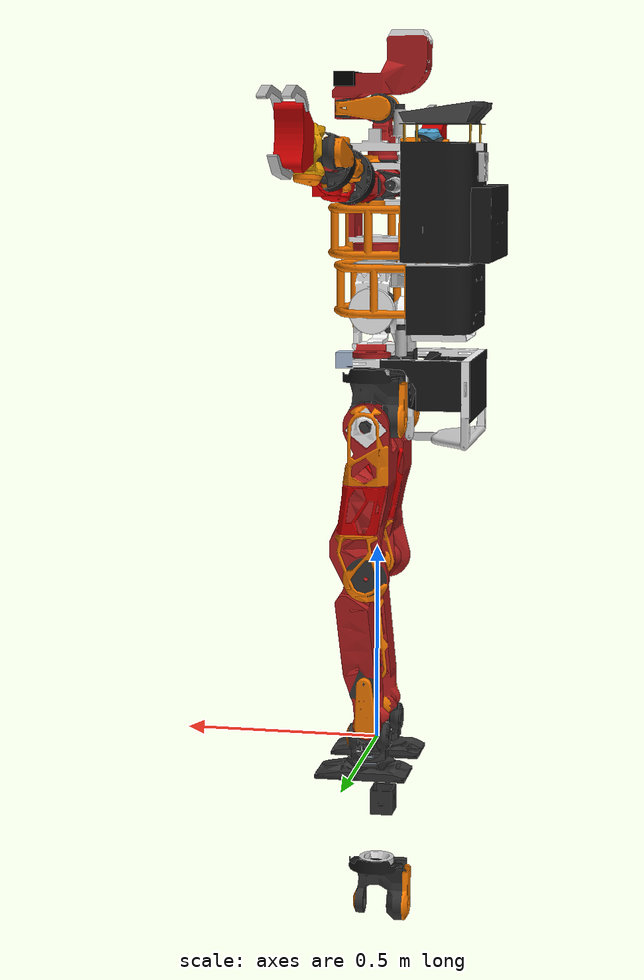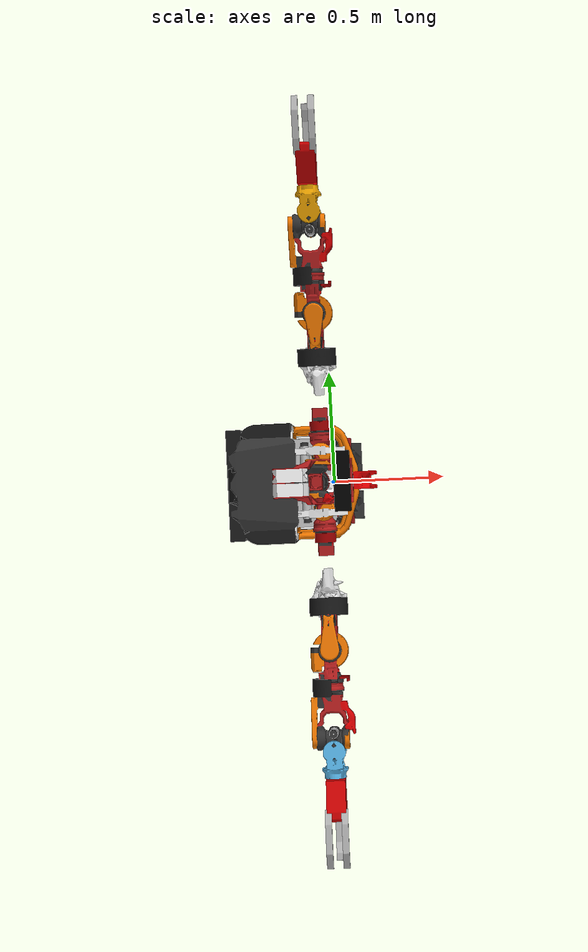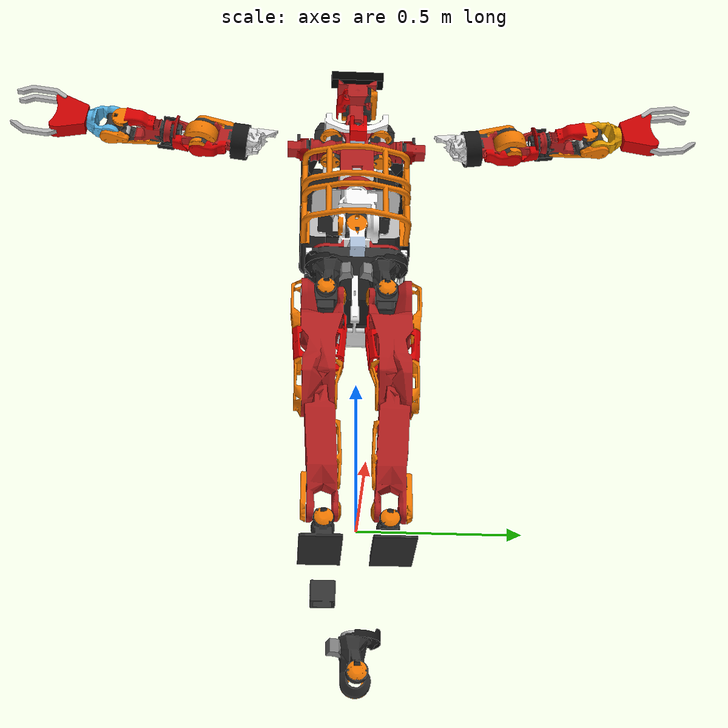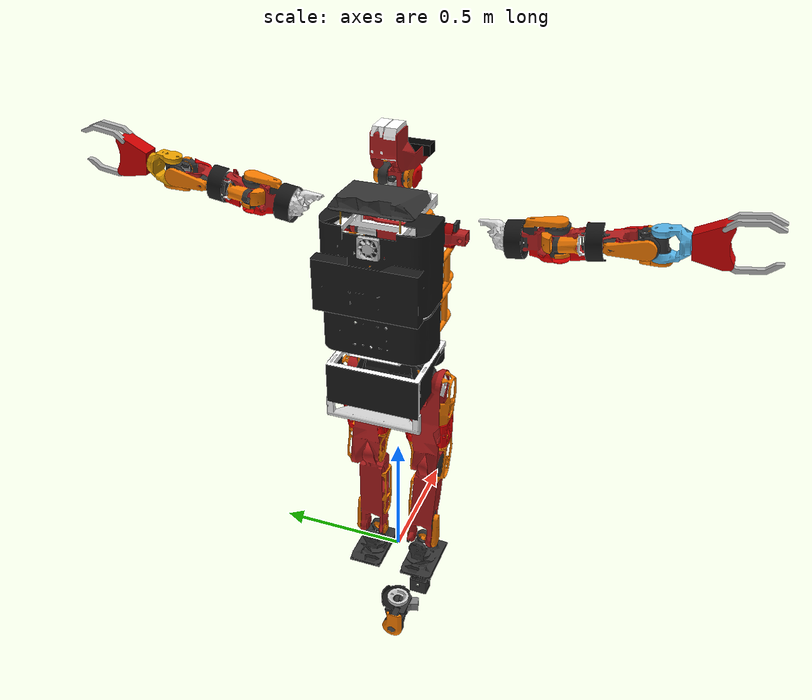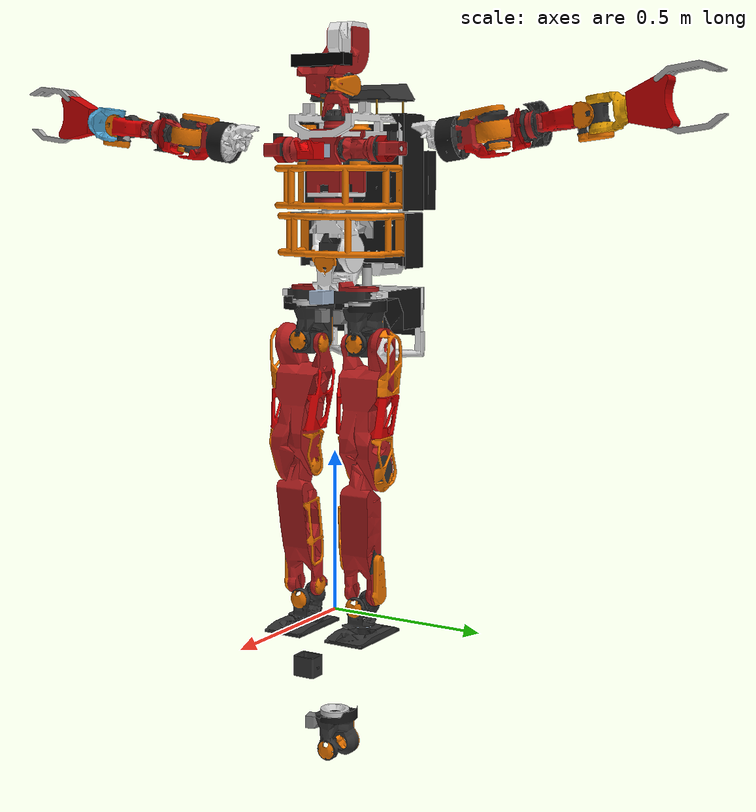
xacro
<?xml version="1.0"?>
<robot name="cart_humanoid" xmlns:xacro="http://ros.org/wiki/xacro" xmlns:xi="http://www.w3.org/2001/XInclude">
  <xacro:arg name="fix_base_link" default="false"/>
  <xacro:arg name="controllers_config" default=""/>

  <xacro:if value="$(arg fix_base_link)">
    <xacro:property name="base_link_joint_type" value="fixed" />
  </xacro:if>
  <xacro:unless value="$(arg fix_base_link)">
    <xacro:property name="base_link_joint_type" value="prismatic" />
  </xacro:unless>

  <!-- Include JAXON_RED robot URDF (contains links and joints) -->
  <xacro:include filename="$(find cart_humanoid_ros2)/urdf/JAXON_RED_gz.urdf.xacro" />

  <link name="world"/>
  <joint name="slide_x" type="${base_link_joint_type}">
    <parent link="world"/>
    <child link="slide_y_link"/>
    <limit effort="1000.0" lower="-999" upper="999" velocity="1"/>
    <axis xyz="1 0 0"/>
    <origin xyz="0 0 0.95" rpy="0 0 0" />
  </joint>

  <link name="slide_y_link">
    <inertial>
      <origin xyz="0 0 0"/>
      <mass value="1.0"/>
      <inertia ixx="1.0" ixy="0.0" ixz="0.0" iyy="1.0" iyz="0.0" izz="1.0" />
    </inertial>
  </link>

  <joint name="slide_y" type="${base_link_joint_type}">
    <parent link="slide_y_link"/>
    <child link="BODY"/>
    <limit effort="1000.0" lower="-999" upper="999" velocity="1"/>
    <axis xyz="0 1 0"/>
    <origin xyz="0 0 0" rpy="0 0 0" />
  </joint>

  <!-- Gazebo ROS2 Control Plugin -->
  <gazebo>
    <plugin filename="gz_ros2_control-system" name="gz_ros2_control::GazeboSimROS2ControlPlugin">
      <parameters>$(arg controllers_config)</parameters>
    </plugin>
  </gazebo>

</robot>

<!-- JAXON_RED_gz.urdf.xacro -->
<robot xmlns:xacro="http://www.ros.org/wiki/xacro" name="JAXON_RED">
  <!-- Include JAXON_RED body links and joints -->
  <xacro:include filename="JAXON_RED_body_stable_inertia.urdf" />

  <!-- ROS2 Control Hardware Interface -->
  <ros2_control name="GazeboSimSystem" type="system">
    <hardware>
      <plugin>gz_ros2_control/GazeboSimSystem</plugin>
    </hardware>

    <joint name="LLEG_JOINT0">
      <command_interface name="position"/>
      <state_interface name="position"/>
      <state_interface name="velocity"/>
    </joint>
    <joint name="LLEG_JOINT1">
      <command_interface name="position"/>
      <state_interface name="position"/>
      <state_interface name="velocity"/>
    </joint>
    <joint name="LLEG_JOINT2">
      <command_interface name="position"/>
      <state_interface name="position"/>
      <state_interface name="velocity"/>
    </joint>
    <joint name="LLEG_JOINT3">
      <command_interface name="position"/>
      <state_interface name="position"/>
      <state_interface name="velocity"/>
    </joint>
    <joint name="LLEG_JOINT4">
      <command_interface name="position"/>
      <state_interface name="position"/>
      <state_interface name="velocity"/>
    </joint>
    <joint name="LLEG_JOINT5">
      <command_interface name="position"/>
      <state_interface name="position"/>
      <state_interface name="velocity"/>
    </joint>

    <joint name="RLEG_JOINT0">
      <command_interface name="position"/>
      <state_interface name="position"/>
      <state_interface name="velocity"/>
    </joint>
    <joint name="RLEG_JOINT1">
      <command_interface name="position"/>
      <state_interface name="position"/>
      <state_interface name="velocity"/>
    </joint>
    <joint name="RLEG_JOINT2">
      <command_interface name="position"/>
      <state_interface name="position"/>
      <state_interface name="velocity"/>
    </joint>
    <joint name="RLEG_JOINT3">
      <command_interface name="position"/>
      <state_interface name="position"/>
      <state_interface name="velocity"/>
    </joint>
    <joint name="RLEG_JOINT4">
      <command_interface name="position"/>
      <state_interface name="position"/>
      <state_interface name="velocity"/>
    </joint>
    <joint name="RLEG_JOINT5">
      <command_interface name="position"/>
      <state_interface name="position"/>
      <state_interface name="velocity"/>
    </joint>

    <joint name="LARM_JOINT0">
      <command_interface name="position"/>
      <state_interface name="position"/>
      <state_interface name="velocity"/>
    </joint>
    <joint name="LARM_JOINT1">
      <command_interface name="position"/>
      <state_interface name="position"/>
      <state_interface name="velocity"/>
    </joint>
    <joint name="LARM_JOINT2">
      <command_interface name="position"/>
      <state_interface name="position"/>
      <state_interface name="velocity"/>
    </joint>
    <joint name="LARM_JOINT3">
      <command_interface name="position"/>
      <state_interface name="position"/>
      <state_interface name="velocity"/>
    </joint>
    <joint name="LARM_JOINT4">
      <command_interface name="position"/>
      <state_interface name="position"/>
      <state_interface name="velocity"/>
    </joint>
    <joint name="LARM_JOINT5">
      <command_interface name="position"/>
      <state_interface name="position"/>
      <state_interface name="velocity"/>
    </joint>
    <joint name="LARM_JOINT6">
      <command_interface name="position"/>
      <state_interface name="position"/>
      <state_interface name="velocity"/>
    </joint>
    <joint name="LARM_JOINT7">
      <command_interface name="position"/>
      <state_interface name="position"/>
      <state_interface name="velocity"/>
    </joint>

    <joint name="RARM_JOINT0">
      <command_interface name="position"/>
      <state_interface name="position"/>
      <state_interface name="velocity"/>
    </joint>
    <joint name="RARM_JOINT1">
      <command_interface name="position"/>
      <state_interface name="position"/>
      <state_interface name="velocity"/>
    </joint>
    <joint name="RARM_JOINT2">
      <command_interface name="position"/>
      <state_interface name="position"/>
      <state_interface name="velocity"/>
    </joint>
    <joint name="RARM_JOINT3">
      <command_interface name="position"/>
      <state_interface name="position"/>
      <state_interface name="velocity"/>
    </joint>
    <joint name="RARM_JOINT4">
      <command_interface name="position"/>
      <state_interface name="position"/>
      <state_interface name="velocity"/>
    </joint>
    <joint name="RARM_JOINT5">
      <command_interface name="position"/>
      <state_interface name="position"/>
      <state_interface name="velocity"/>
    </joint>
    <joint name="RARM_JOINT6">
      <command_interface name="position"/>
      <state_interface name="position"/>
      <state_interface name="velocity"/>
    </joint>
    <joint name="RARM_JOINT7">
      <command_interface name="position"/>
      <state_interface name="position"/>
      <state_interface name="velocity"/>
    </joint>

    <joint name="CHEST_JOINT0">
      <command_interface name="position"/>
      <state_interface name="position"/>
      <state_interface name="velocity"/>
    </joint>
    <joint name="CHEST_JOINT1">
      <command_interface name="position"/>
      <state_interface name="position"/>
      <state_interface name="velocity"/>
    </joint>
    <joint name="CHEST_JOINT2">
      <command_interface name="position"/>
      <state_interface name="position"/>
      <state_interface name="velocity"/>
    </joint>

    <joint name="HEAD_JOINT0">
      <command_interface name="position"/>
      <state_interface name="position"/>
      <state_interface name="velocity"/>
    </joint>
    <joint name="HEAD_JOINT1">
      <command_interface name="position"/>
      <state_interface name="position"/>
      <state_interface name="velocity"/>
    </joint>

    <joint name="L_finger1_joint">
      <command_interface name="position"/>
      <state_interface name="position"/>
      <state_interface name="velocity"/>
    </joint>

    <joint name="R_finger1_joint">
      <command_interface name="position"/>
      <state_interface name="position"/>
      <state_interface name="velocity"/>
    </joint>
  </ros2_control>

  <link name="LARM_LINK7">
    <visual>
      <origin xyz="0 0.0 0" rpy="0 -0 0"/>
      <geometry>
        <mesh filename="package://cart_humanoid_ros2/urdf/JAXON_RED_meshes/l_hand_attached_link.dae" scale="1 1 1" />
      </geometry>
    </visual>
    <collision>
      <origin xyz="0 0.12 0" rpy="0 -0 0"/>
      <geometry>
        <box size="0.1 0.25 0.1"/>
      </geometry>
    </collision>
    <inertial>
      <mass value="4.219" />
      <origin xyz="-0.02359 0.12884 -0.02825" rpy="0 -0 0"/>
      <inertia ixx="0.0527968" ixy="0" ixz="0" iyy="0.057042" iyz="0" izz="0.0492541"/>
    </inertial>
  </link>
  <gazebo reference="LARM_LINK7">
    <mu1>0.9</mu1>
    <mu2>0.9</mu2>
  </gazebo>

  <link name="RARM_LINK7">
    <visual>
      <origin xyz="0 0 0" rpy="0 -0 0"/>
      <geometry>
        <mesh filename="package://cart_humanoid_ros2/urdf/JAXON_RED_meshes/r_hand_attached_link.dae" scale="1 1 1" />
      </geometry>
    </visual>
    <collision>
      <origin xyz="0 -0.12 0" rpy="0 -0 0"/>
      <geometry>
        <box size="0.1 0.25 0.1"/>
      </geometry>
    </collision>
    <inertial>
      <mass value="4.219" />
      <origin xyz="0.02359 -0.12884 -0.02825" rpy="0 -0 0"/>
      <inertia ixx="0.0527968" ixy="0" ixz="0" iyy="0.057042" iyz="0" izz="0.0492541"/>
    </inertial>
  </link>
  <gazebo reference="RARM_LINK7">
    <mu1>0.9</mu1>
    <mu2>0.9</mu2>
  </gazebo>

  <!-- HEAD with camera sensor -->
  <joint name="adjuster_joint" type="fixed">
    <origin xyz="0.2 0 -0.2" rpy="0 0 0" />
    <parent link="HEAD_LINK1" />
    <child link="adjuster_link" />
  </joint>
  <link name="adjuster_link"/>

  <!-- Camera RGB frame (matching turtlebot kinect.urdf.xacro) -->
  <joint name="camera_rgb_joint" type="fixed">
    <origin xyz="-0.087 -0.0125 0.2870" rpy="0 0 0"/>
    <parent link="adjuster_link"/>
    <child link="camera_rgb_frame"/>
  </joint>
  <link name="camera_rgb_frame"/>

  <!-- Camera link and sensor -->
  <joint name="camera_joint" type="fixed">
    <origin xyz="-0.031 0.0125 -0.016" rpy="0 0 0"/>
    <parent link="camera_rgb_frame"/>
    <child link="camera_link"/>
  </joint>

  <link name="camera_link">
    <visual>
      <geometry>
        <box size="0.05 0.18 0.035"/>
      </geometry>
      <material name="kinect_color">
        <color rgba="0.0 0.0 0.0 1.0"/>
      </material>
    </visual>
    <collision>
      <geometry>
        <box size="0.05 0.18 0.035"/>
      </geometry>
    </collision>
    <inertial>
      <mass value="0.1"/>
      <origin xyz="0 0 0"/>
      <inertia ixx="0.001" ixy="0.0" ixz="0.0" iyy="0.001" iyz="0.0" izz="0.001"/>
    </inertial>
  </link>

  <!-- Camera depth frame (matching turtlebot kinect.urdf.xacro) -->
  <joint name="camera_depth_joint" type="fixed">
    <origin xyz="0 0.025 0" rpy="0 0 0"/>
    <parent link="camera_rgb_frame"/>
    <child link="camera_depth_frame"/>
  </joint>

  <link name="camera_depth_frame"/>

  <!-- Camera depth optical frame -->
  <joint name="camera_depth_optical_joint" type="fixed">
    <origin xyz="0 0 0" rpy="-1.5707963267948966 0 -1.5707963267948966"/>
    <parent link="camera_depth_frame"/>
    <child link="camera_depth_optical_frame"/>
  </joint>

  <link name="camera_depth_optical_frame"/>

  <!-- Gazebo Camera Sensor -->
  <gazebo reference="camera_link">
    <visual>
      <cast_shadows>false</cast_shadows>
    </visual>
    <sensor name="camera" type="rgbd_camera">
      <always_on>1</always_on>
      <update_rate>5</update_rate>
      <visualize>true</visualize>
      <topic>camera</topic>
      <gz_frame_id>camera_depth_optical_frame</gz_frame_id>
      <camera name="camera">
        <horizontal_fov>1.047198</horizontal_fov>
        <image>
          <width>320</width>
          <height>240</height>
          <format>R8G8B8</format>
        </image>
        <clip>
          <near>0.02</near>
          <far>8.0</far>
        </clip>
        <noise>
          <type>gaussian</type>
          <mean>0.0</mean>
          <stddev>0.007</stddev>
        </noise>
      </camera>
    </sensor>
  </gazebo>

  <!-- HAND -->
  <xacro:include filename="$(find cart_humanoid_ros2)/urdf/hand.urdf.xacro" />
  <xacro:jvrc_hand prefix="L_" parent="LARM_LINK7" type="revolute">
    <origin xyz="0 0 -0.085" rpy="3.141592654 1.5707963268 0" />
  </xacro:jvrc_hand>
  <xacro:jvrc_hand prefix="R_" parent="RARM_LINK7" type="revolute">
    <origin xyz="0 0 -0.085" rpy="0 1.5707963268 0" />
  </xacro:jvrc_hand>

</robot>

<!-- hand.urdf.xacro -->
<robot xmlns:xacro="http://ros.org/wiki/xacro" name="JVRC_HAND">
  <!-- inertial parameter is not correct -->
  <xacro:macro name="jvrc_hand" params="prefix parent type *origin">
    <link name="${prefix}palm">
      <inertial>
        <origin xyz="0.0835 0 -0.0181" rpy="0 0 0" />
        <mass value="0.8" />
        <inertia ixx="0.001314416" ixy="0" ixz="0" iyy="0.002746271" iyz="0" izz="0.002284148"/>
      </inertial>
      <visual>
        <geometry>
          <mesh filename="package://cart_humanoid_ros2/urdf/hand_meshes/JVRC_palm.stl" />
        </geometry>
        <material name="red">
          <color rgba="0.8 0.0 0.0 1.0"/>
        </material>
      </visual>
      <collision>
        <geometry>
          <mesh filename="package://cart_humanoid_ros2/urdf/hand_meshes/JVRC_palm.stl" />
        </geometry>
      </collision>
    </link>

    <link name="${prefix}finger1">
      <inertial>
        <origin xyz="0.021 0 -0.04556" rpy="0 0 0" />
        <mass value="0.2" />
        <inertia ixx="0.1" ixy="0" ixz="0" iyy="0.1" iyz="0" izz="0.1"/>
      </inertial>
      <visual>
        <origin xyz="0.0 0 0" rpy="0 0 0" />
        <geometry>
          <mesh filename="package://cart_humanoid_ros2/urdf/hand_meshes/JVRC_finger1.stl" />
        </geometry>
        <material name="finger">
          <color rgba="0.7 0.7 0.7 1.0"/>
        </material>
      </visual>
      <collision>
        <origin xyz="0.0 0 0" rpy="0 0 0" />
        <geometry>
          <mesh filename="package://cart_humanoid_ros2/urdf/hand_meshes/JVRC_finger1.stl" />
        </geometry>
      </collision>
    </link>
    <link name="${prefix}finger2">
      <inertial>
        <origin xyz="0.0577 0 -0.0151" rpy="0 0 0" />
        <mass value="0.4" />
        <inertia ixx="3.570504e-04" ixy="0" ixz="0" iyy="8.546976e-04" iyz="0" izz="8.168899e-04"/>
      </inertial>
      <visual>
        <origin xyz="0 0 0" rpy="0 0 0" />
        <geometry>
          <mesh filename="package://cart_humanoid_ros2/urdf/hand_meshes/JVRC_finger2.stl" />
        </geometry>
        <material name="finger" />
      </visual>
      <collision>
        <origin xyz="0 0 0" rpy="0 0 0" />
        <geometry>
          <mesh filename="package://cart_humanoid_ros2/urdf/hand_meshes/JVRC_finger2.stl" />
        </geometry>
      </collision>
    </link>
    <joint name="${prefix}finger1_joint" type="${type}">
      <origin xyz="0.09 0.06 0" rpy="0 0 0"/>
      <parent link="${prefix}palm"/>
      <child link="${prefix}finger1"/>
      <axis xyz="0 0 1" />
      <limit effort="20" upper="0.6" lower="-1.38" velocity="4"/>
    </joint>
    <joint name="${prefix}finger2_joint" type="fixed">
      <origin xyz="0.09 -0.06 0" rpy="0 0 0"/>
      <parent link="${prefix}palm"/>
      <child link="${prefix}finger2"/>
      <axis xyz="0 0 1" />
      <limit effort="20" upper="1.38" lower="-0.6" velocity="4"/>
    </joint>

    <joint name="${prefix}palm_joint" type="fixed">
      <xacro:insert_block name="origin"/>
      <parent link="${parent}"/>
      <child link="${prefix}palm"/>
    </joint>
  </xacro:macro>
</robot>
